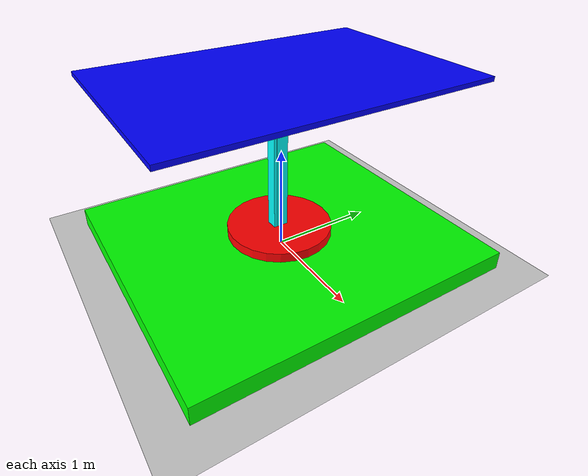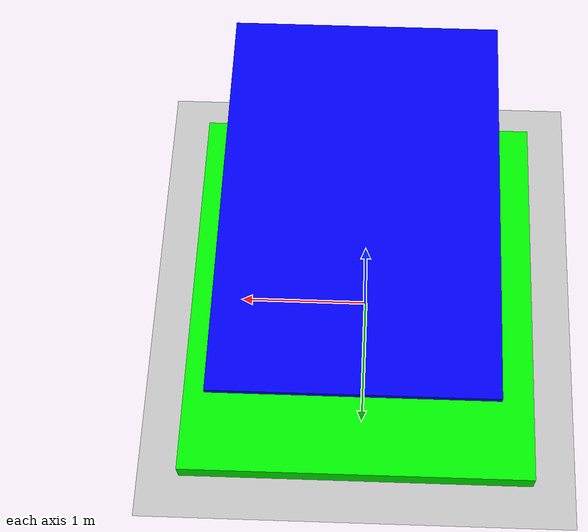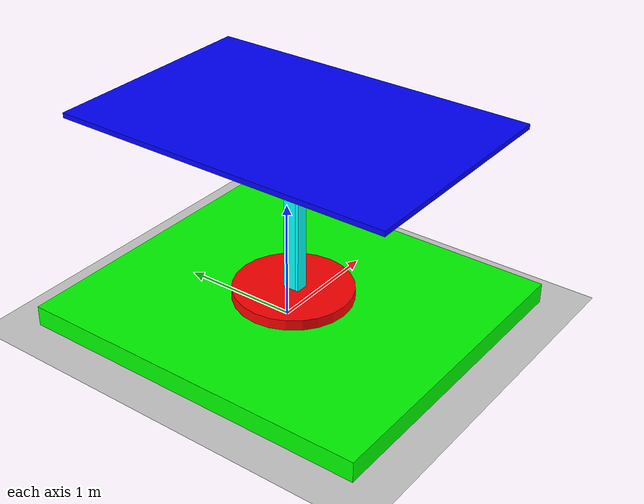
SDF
<sdf version="1.6">
 <world name="default">
  <light name="sun" type="directional">
   <pose>0 0 10 0 -0 0</pose>
   <diffuse>0.8 0.8 0.8 1</diffuse>
   <specular>0.1 0.1 0.1 1</specular>
   <attenuation>
    <range>1000</range>
    <constant>0.9</constant>
    <linear>0.01</linear>
    <quadratic>0.001</quadratic>
   </attenuation>
   <direction>-0.5 0.5 -1</direction>
  </light>
  <model name="ground_plane">
   <static>1</static>
   <link name="link">
    <collision name="collision">
     <geometry><plane><normal>0 0 1</normal><size>100 100</size></plane></geometry>
     <surface><friction><ode><mu>100</mu><mu2>50</mu2></ode></friction></surface>
    </collision>
    <visual name="visual">
     <cast_shadows>0</cast_shadows>
     <geometry><plane><normal>0 0 1</normal><size>100 100</size></plane></geometry>
     <material>
      <script><uri>file://media/materials/scripts/gazebo.material</uri><name>Gazebo/Grey</name></script>
     </material>
    </visual>
   </link>
  </model>
  <gravity>0 0 -9.8</gravity>
  <magnetic_field>6e-06 2.3e-05 -4.2e-05</magnetic_field>
  <atmosphere type="adiabatic"/>
  <physics name="default_physics" default="0" type="ode">
   <max_step_size>0.001</max_step_size>
   <real_time_factor>1</real_time_factor>
   <real_time_update_rate>1000</real_time_update_rate>
  </physics>
  <scene><ambient>0.4 0.4 0.4 1</ambient><background>0.7 0.7 0.7 1</background><shadows>1</shadows></scene>
  <spherical_coordinates>
   <surface_model>EARTH_WGS84</surface_model>
   <latitude_deg>0</latitude_deg>
   <longitude_deg>0</longitude_deg>
   <elevation>0</elevation>
   <heading_deg>0</heading_deg>
  </spherical_coordinates>
  <model name="prova_pannello4">
   <pose>0.028702 -0.07304 -0.020506 0 -3e-06 5e-06</pose>
   <link name="link_0">
    <pose>0.000195 0.033109 0.107333 0 -0 0</pose>
    <inertial>
     <mass>1.43581</mass>
     <inertia><ixx>1.11475</ixx><ixy>0</ixy><ixz>0</ixz><iyy>0.884506</iyy><iyz>0</iyz><izz>1.99204</izz></inertia>
    </inertial>
    <visual name="visual">
     <geometry><box><size>2.71332 3.04739 0.173663</size></box></geometry>
     <material>
      <lighting>1</lighting>
      <script><uri>file://media/materials/scripts/gazebo.material</uri><name>Gazebo/Grey</name></script>
      <ambient>0.3 0.3 0 1</ambient>
      <diffuse>0 1 0 1</diffuse>
      <specular>0.01 0.01 0.01 1</specular>
      <emissive>0 0 0 1</emissive>
      <shader type="vertex"><normal_map>__default__</normal_map></shader>
     </material>
    </visual>
    <collision name="collision">
     <geometry><box><size>2.71332 3.04739 0.173663</size></box></geometry>
     <surface>
      <friction>
       <ode><mu>1</mu><mu2>1</mu2><fdir1>0 0 0</fdir1><slip1>0</slip1><slip2>0</slip2></ode>
       <torsional>
        <coefficient>1</coefficient>
        <patch_radius>0</patch_radius>
        <surface_radius>0</surface_radius>
        <use_patch_radius>1</use_patch_radius>
        <ode><slip>0</slip></ode>
       </torsional>
      </friction>
      <bounce><restitution_coefficient>0</restitution_coefficient><threshold>1e+06</threshold></bounce>
      <contact>
       <collide_without_contact>0</collide_without_contact>
       <collide_without_contact_bitmask>1</collide_without_contact_bitmask>
       <collide_bitmask>1</collide_bitmask>
       <ode>
        <soft_cfm>0</soft_cfm>
        <soft_erp>0.2</soft_erp>
        <kp>1e+13</kp>
        <kd>1</kd>
        <max_vel>0.01</max_vel>
        <min_depth>0</min_depth>
       </ode>
       <bullet>
        <split_impulse>1</split_impulse>
        <split_impulse_penetration_threshold>-0.01</split_impulse_penetration_threshold>
        <soft_cfm>0</soft_cfm>
        <soft_erp>0.2</soft_erp>
        <kp>1e+13</kp>
        <kd>1</kd>
       </bullet>
      </contact>
     </surface>
    </collision>
   </link>
   <link name="link_3">
    <pose>0.000195 0.033109 0.245332 0 -0 0</pose>
    <inertial>
     <mass>0.0893069</mass>
     <inertia>
      <ixx>0.00564104</ixx>
      <ixy>0</ixy>
      <ixz>0</ixz>
      <iyy>0.00564104</iyy>
      <iyz>0</iyz>
      <izz>0.0111634</izz>
     </inertia>
    </inertial>
    <visual name="visual">
     <geometry><cylinder><radius>0.5</radius><length>0.0893066</length></cylinder></geometry>
     <material>
      <lighting>1</lighting>
      <script><uri>file://media/materials/scripts/gazebo.material</uri><name>Gazebo/Grey</name></script>
      <ambient>0.3 0.3 0.3 1</ambient>
      <diffuse>1 0 0 1</diffuse>
      <specular>0.01 0.01 0.01 1</specular>
      <emissive>0 0 0 1</emissive>
      <shader type="vertex"><normal_map>__default__</normal_map></shader>
     </material>
    </visual>
    <collision name="collision">
     <geometry><cylinder><radius>0.5</radius><length>0.089307</length></cylinder></geometry>
     <surface>
      <friction>
       <ode><mu>1</mu><mu2>1</mu2><fdir1>0 0 0</fdir1><slip1>0</slip1><slip2>0</slip2></ode>
       <torsional>
        <coefficient>1</coefficient>
        <patch_radius>0</patch_radius>
        <surface_radius>0</surface_radius>
        <use_patch_radius>1</use_patch_radius>
        <ode><slip>0</slip></ode>
       </torsional>
      </friction>
      <bounce><restitution_coefficient>0</restitution_coefficient><threshold>1e+06</threshold></bounce>
      <contact>
       <collide_without_contact>0</collide_without_contact>
       <collide_without_contact_bitmask>1</collide_without_contact_bitmask>
       <collide_bitmask>1</collide_bitmask>
       <ode>
        <soft_cfm>0</soft_cfm>
        <soft_erp>0.2</soft_erp>
        <kp>1e+13</kp>
        <kd>1</kd>
        <max_vel>0.01</max_vel>
        <min_depth>0</min_depth>
       </ode>
       <bullet>
        <split_impulse>1</split_impulse>
        <split_impulse_penetration_threshold>-0.01</split_impulse_penetration_threshold>
        <soft_cfm>0</soft_cfm>
        <soft_erp>0.2</soft_erp>
        <kp>1e+13</kp>
        <kd>1</kd>
       </bullet>
      </contact>
     </surface>
    </collision>
   </link>
   <link name="link_7">
    <pose>0.000195 0.033109 0.932489 0 -0 0</pose>
    <inertial>
     <mass>0.0159818</mass>
     <inertia>
      <ixx>0.00236998</ixx>
      <ixy>0</ixy>
      <ixz>0</ixz>
      <iyy>0.00236899</iyy>
      <iyz>0</iyz>
      <izz>3.204e-05</izz>
     </inertia>
    </inertial>
    <visual name="visual">
     <geometry><box><size>0.107951 0.111359 1.32933</size></box></geometry>
     <material>
      <lighting>1</lighting>
      <script><uri>file://media/materials/scripts/gazebo.material</uri><name>Gazebo/Grey</name></script>
      <ambient>0.3 0.3 0.3 1</ambient>
      <diffuse>0 1 1 1</diffuse>
      <specular>0.01 0.01 0.01 1</specular>
      <emissive>0 0 0 1</emissive>
      <shader type="vertex"><normal_map>__default__</normal_map></shader>
     </material>
    </visual>
    <collision name="collision">
     <geometry><box><size>0.107951 0.111359 1.32933</size></box></geometry>
     <surface>
      <friction>
       <ode><mu>1</mu><mu2>1</mu2><fdir1>0 0 0</fdir1><slip1>0</slip1><slip2>0</slip2></ode>
       <torsional>
        <coefficient>1</coefficient>
        <patch_radius>0</patch_radius>
        <surface_radius>0</surface_radius>
        <use_patch_radius>1</use_patch_radius>
        <ode><slip>0</slip></ode>
       </torsional>
      </friction>
      <bounce><restitution_coefficient>0</restitution_coefficient><threshold>1e+06</threshold></bounce>
      <contact>
       <collide_without_contact>0</collide_without_contact>
       <collide_without_contact_bitmask>1</collide_without_contact_bitmask>
       <collide_bitmask>1</collide_bitmask>
       <ode>
        <soft_cfm>0</soft_cfm>
        <soft_erp>0.2</soft_erp>
        <kp>1e+13</kp>
        <kd>1</kd>
        <max_vel>0.01</max_vel>
        <min_depth>0</min_depth>
       </ode>
       <bullet>
        <split_impulse>1</split_impulse>
        <split_impulse_penetration_threshold>-0.01</split_impulse_penetration_threshold>
        <soft_cfm>0</soft_cfm>
        <soft_erp>0.2</soft_erp>
        <kp>1e+13</kp>
        <kd>1</kd>
       </bullet>
      </contact>
     </surface>
    </collision>
   </link>
   <link name="link_7_clone">
    <pose>-0.001493 -0.037947 0.980502 0 -0 0</pose>
    <inertial>
     <mass>0.00443718</mass>
     <inertia>
      <ixx>0.00075451</ixx>
      <ixy>0</ixy>
      <ixz>0</ixz>
      <iyy>0.00075851</iyy>
      <iyz>0</iyz>
      <izz>4.62e-06</izz>
     </inertia>
    </inertial>
    <visual name="visual">
     <geometry><box><size>0.107951 0.028788 1.42818</size></box></geometry>
     <material>
      <lighting>1</lighting>
      <script><uri>file://media/materials/scripts/gazebo.material</uri><name>Gazebo/Grey</name></script>
      <ambient>0.3 0.3 0.3 1</ambient>
      <diffuse>0 1 1 1</diffuse>
      <specular>0.01 0.01 0.01 1</specular>
      <emissive>0 0 0 1</emissive>
      <shader type="vertex"><normal_map>__default__</normal_map></shader>
     </material>
    </visual>
    <collision name="collision">
     <geometry><box><size>0.107951 0.028788 1.42818</size></box></geometry>
     <surface>
      <friction>
       <ode><mu>1</mu><mu2>1</mu2><fdir1>0 0 0</fdir1><slip1>0</slip1><slip2>0</slip2></ode>
       <torsional>
        <coefficient>1</coefficient>
        <patch_radius>0</patch_radius>
        <surface_radius>0</surface_radius>
        <use_patch_radius>1</use_patch_radius>
        <ode><slip>0</slip></ode>
       </torsional>
      </friction>
      <bounce><restitution_coefficient>0</restitution_coefficient><threshold>1e+06</threshold></bounce>
      <contact>
       <collide_without_contact>0</collide_without_contact>
       <collide_without_contact_bitmask>1</collide_without_contact_bitmask>
       <collide_bitmask>1</collide_bitmask>
       <ode>
        <soft_cfm>0</soft_cfm>
        <soft_erp>0.2</soft_erp>
        <kp>1e+13</kp>
        <kd>1</kd>
        <max_vel>0.01</max_vel>
        <min_depth>0</min_depth>
       </ode>
       <bullet>
        <split_impulse>1</split_impulse>
        <split_impulse_penetration_threshold>-0.01</split_impulse_penetration_threshold>
        <soft_cfm>0</soft_cfm>
        <soft_erp>0.2</soft_erp>
        <kp>1e+13</kp>
        <kd>1</kd>
       </bullet>
      </contact>
     </surface>
    </collision>
   </link>
   <link name="link_8">
    <pose>0.000518 0.032149 1.6666 1.5707 -0 0</pose>
    <inertial>
     <mass>0.0020739</mass>
     <inertia>
      <ixx>4.59927e-06</ixx>
      <ixy>0</ixy>
      <ixz>0</ixz>
      <iyy>4.59927e-06</iyy>
      <iyz>0</iyz>
      <izz>4.7211e-06</izz>
     </inertia>
    </inertial>
    <visual name="visual">
     <geometry><cylinder><radius>0.0674985</radius><length>0.11381</length></cylinder></geometry>
     <material>
      <lighting>1</lighting>
      <script><uri>file://media/materials/scripts/gazebo.material</uri><name>Gazebo/Grey</name></script>
      <ambient>0.3 0.3 0.3 1</ambient>
      <diffuse>1 1 1 1</diffuse>
      <specular>0.01 0.01 0.01 1</specular>
      <emissive>0 0 0 1</emissive>
      <shader type="vertex"><normal_map>__default__</normal_map></shader>
     </material>
    </visual>
    <collision name="collision">
     <geometry><cylinder><radius>0.067498</radius><length>0.11381</length></cylinder></geometry>
     <surface>
      <friction>
       <ode><mu>1</mu><mu2>1</mu2><fdir1>0 0 0</fdir1><slip1>0</slip1><slip2>0</slip2></ode>
       <torsional>
        <coefficient>1</coefficient>
        <patch_radius>0</patch_radius>
        <surface_radius>0</surface_radius>
        <use_patch_radius>1</use_patch_radius>
        <ode><slip>0</slip></ode>
       </torsional>
      </friction>
      <bounce><restitution_coefficient>0</restitution_coefficient><threshold>1e+06</threshold></bounce>
      <contact>
       <collide_without_contact>0</collide_without_contact>
       <collide_without_contact_bitmask>1</collide_without_contact_bitmask>
       <collide_bitmask>1</collide_bitmask>
       <ode>
        <soft_cfm>0</soft_cfm>
        <soft_erp>0.2</soft_erp>
        <kp>1e+13</kp>
        <kd>1</kd>
        <max_vel>0.01</max_vel>
        <min_depth>0</min_depth>
       </ode>
       <bullet>
        <split_impulse>1</split_impulse>
        <split_impulse_penetration_threshold>-0.01</split_impulse_penetration_threshold>
        <soft_cfm>0</soft_cfm>
        <soft_erp>0.2</soft_erp>
        <kp>1e+13</kp>
        <kd>1</kd>
       </bullet>
      </contact>
     </surface>
    </collision>
   </link>
   <link name="link_9">
    <pose>0.011759 0.034408 1.74152 0 -0 0</pose>
    <inertial>
     <mass>0.235133</mass>
     <inertia>
      <ixx>0.162713</ixx>
      <ixy>0</ixy>
      <ixz>0</ixz>
      <iyy>0.073269</iyy>
      <iyz>0</iyz>
      <izz>0.235912</izz>
     </inertia>
    </inertial>
    <gravity>0</gravity>
    <visual name="visual">
     <geometry><box><size>1.93326 2.88136 0.042205</size></box></geometry>
     <material>
      <lighting>1</lighting>
      <script><uri>file://media/materials/scripts/gazebo.material</uri><name>Gazebo/Grey</name></script>
      <ambient>0.3 0.3 0.3 1</ambient>
      <diffuse>0 0 1 1</diffuse>
      <specular>0.01 0.01 0.01 1</specular>
      <emissive>0 0 0 1</emissive>
      <shader type="vertex"><normal_map>__default__</normal_map></shader>
     </material>
    </visual>
    <collision name="collision">
     <geometry><box><size>1.93326 2.88136 0.042205</size></box></geometry>
     <surface>
      <friction>
       <ode><mu>1</mu><mu2>1</mu2><fdir1>0 0 0</fdir1><slip1>0</slip1><slip2>0</slip2></ode>
       <torsional>
        <coefficient>1</coefficient>
        <patch_radius>0</patch_radius>
        <surface_radius>0</surface_radius>
        <use_patch_radius>1</use_patch_radius>
        <ode><slip>0</slip></ode>
       </torsional>
      </friction>
      <bounce><restitution_coefficient>0</restitution_coefficient><threshold>1e+06</threshold></bounce>
      <contact>
       <collide_without_contact>0</collide_without_contact>
       <collide_without_contact_bitmask>1</collide_without_contact_bitmask>
       <collide_bitmask>1</collide_bitmask>
       <ode>
        <soft_cfm>0</soft_cfm>
        <soft_erp>0.2</soft_erp>
        <kp>1e+13</kp>
        <kd>1</kd>
        <max_vel>0.01</max_vel>
        <min_depth>0</min_depth>
       </ode>
       <bullet>
        <split_impulse>1</split_impulse>
        <split_impulse_penetration_threshold>-0.01</split_impulse_penetration_threshold>
        <soft_cfm>0</soft_cfm>
        <soft_erp>0.2</soft_erp>
        <kp>1e+13</kp>
        <kd>1</kd>
       </bullet>
      </contact>
     </surface>
    </collision>
   </link>
   <joint name="base-asta" type="fixed">
    <parent>link_7</parent>
    <child>link_3</child>
    <pose>0 0 0 -0.02 0 0</pose>
    <physics>
     <ode><limit><cfm>0</cfm><erp>0.2</erp></limit><suspension><cfm>0</cfm><erp>0.2</erp></suspension></ode>
    </physics>
   </joint>
   <joint name="link_7_clone_JOINT_0" type="fixed">
    <parent>link_7_clone</parent>
    <child>link_7</child>
    <pose>0 0 0 -0.03 -0.01 0</pose>
    <physics>
     <ode><limit><cfm>0</cfm><erp>0.2</erp></limit><suspension><cfm>0</cfm><erp>0.2</erp></suspension></ode>
    </physics>
   </joint>
   <joint name="pann-cilindro" type="fixed">
    <parent>link_8</parent>
    <child>link_9</child>
    <physics>
     <ode><limit><cfm>0</cfm><erp>0.2</erp></limit><suspension><cfm>0</cfm><erp>0.2</erp></suspension></ode>
    </physics>
   </joint>
   <joint name="rot_base" type="revolute">
    <parent>link_0</parent>
    <child>link_3</child>
    <pose>0 0 0 -0.04 0 0</pose>
    <axis>
     <xyz>0 0 1</xyz>
     <use_parent_model_frame>0</use_parent_model_frame>
     <limit>
      <lower>-1.79769e+308</lower>
      <upper>1.79769e+308</upper>
      <effort>-1</effort>
      <velocity>-1</velocity>
     </limit>
     <dynamics>
      <spring_reference>0</spring_reference>
      <spring_stiffness>0</spring_stiffness>
      <damping>0</damping>
      <friction>0</friction>
     </dynamics>
    </axis>
    <physics>
     <ode><limit><cfm>0</cfm><erp>0.2</erp></limit><suspension><cfm>0</cfm><erp>0.2</erp></suspension></ode>
    </physics>
   </joint>
   <joint name="rot_pann" type="revolute">
    <parent>link_7_clone</parent>
    <child>link_8</child>
    <axis>
     <xyz>0 0 1</xyz>
     <use_parent_model_frame>0</use_parent_model_frame>
     <limit><lower>-1</lower><upper>1</upper><effort>-1</effort><velocity>-1</velocity></limit>
     <dynamics>
      <spring_reference>0</spring_reference>
      <spring_stiffness>0</spring_stiffness>
      <damping>0</damping>
      <friction>0.01</friction>
     </dynamics>
    </axis>
    <physics>
     <ode><limit><cfm>0</cfm><erp>0.2</erp></limit><suspension><cfm>0</cfm><erp>0.2</erp></suspension></ode>
    </physics>
   </joint>
   <static>0</static>
   <plugin name="gazebo_ros_force" filename="libgazebo_ros_force.so">
    <alwaysOn>true</alwaysOn>
    <update>100</update>
    <updateRate>100.0</updateRate>
    <bodyName>link_3</bodyName>
    <topicName>force</topicName>
   </plugin>
   <plugin name="gazebo_ros_force2" filename="libgazebo_ros_force.so">
    <alwaysOn>true</alwaysOn>
    <update>100</update>
    <updateRate>100.0</updateRate>
    <bodyName>link_8</bodyName>
    <topicName>force2</topicName>
   </plugin>
  </model>
 </world>
</sdf>
